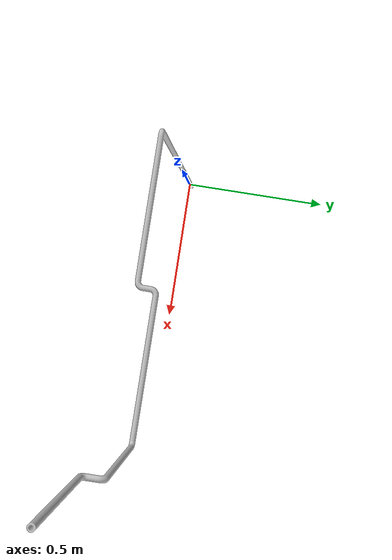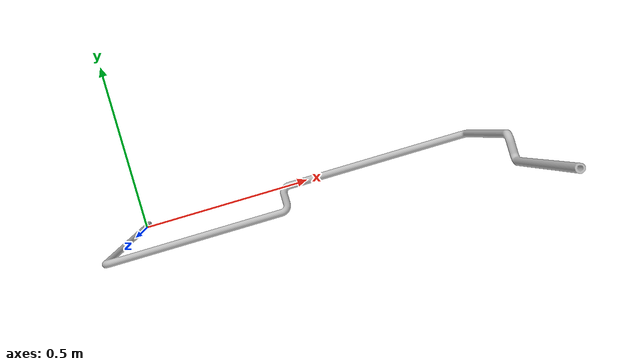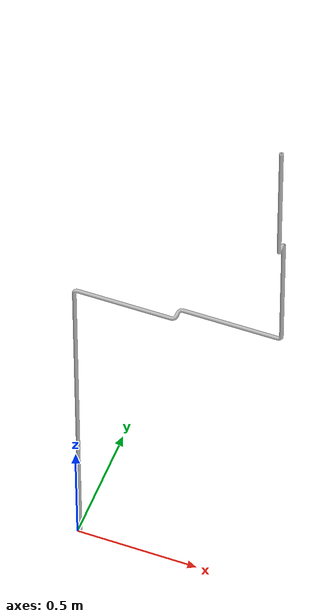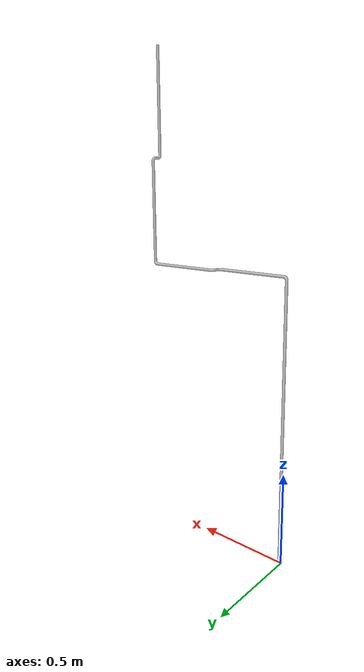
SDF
<?xml version="1.0" ?>
<sdf version="1.4">
  <model name="wall_pipe">
    <static>true</static>
    <link name="link">
      <inertial>
        <mass>10</mass>
      </inertial>
      <visual name="visual">
        <transparency>0.2</transparency>
        <geometry>
          <mesh>
            <uri>model://wall_pipe/meshes/wall_pipe.stl</uri>
          </mesh>
        </geometry>
      </visual>
    </link>
  </model>
</sdf>
